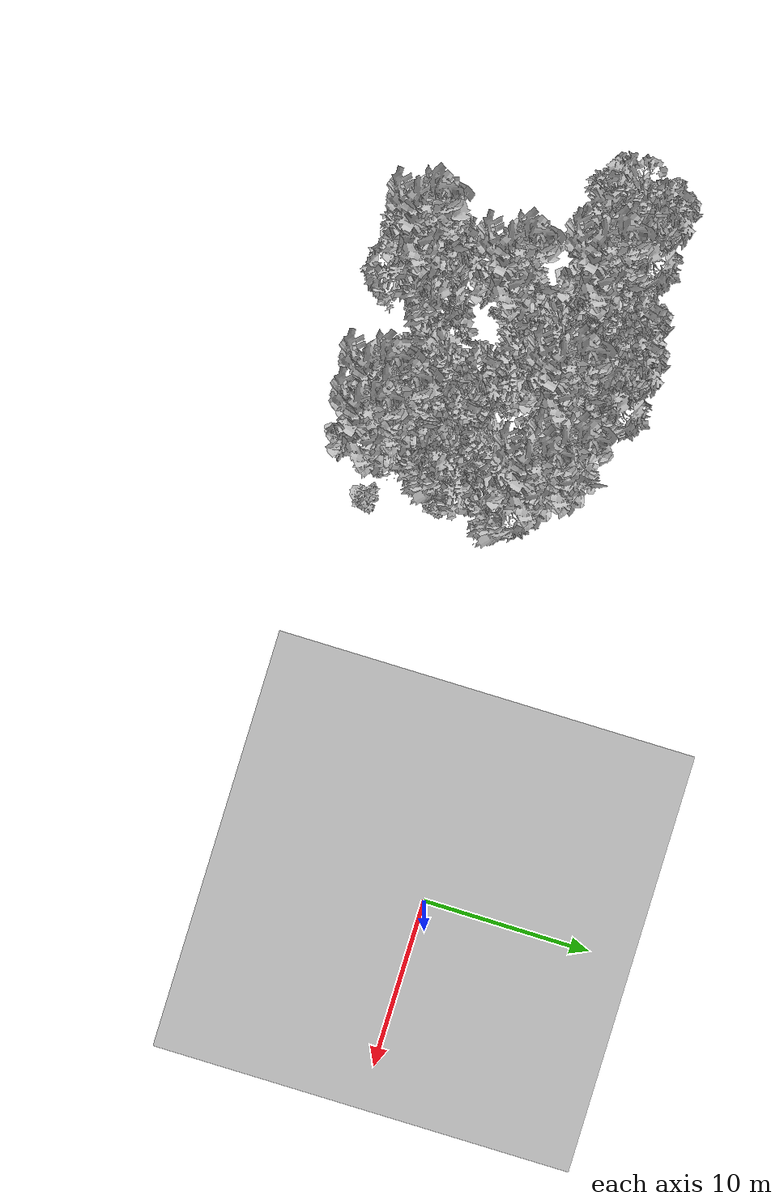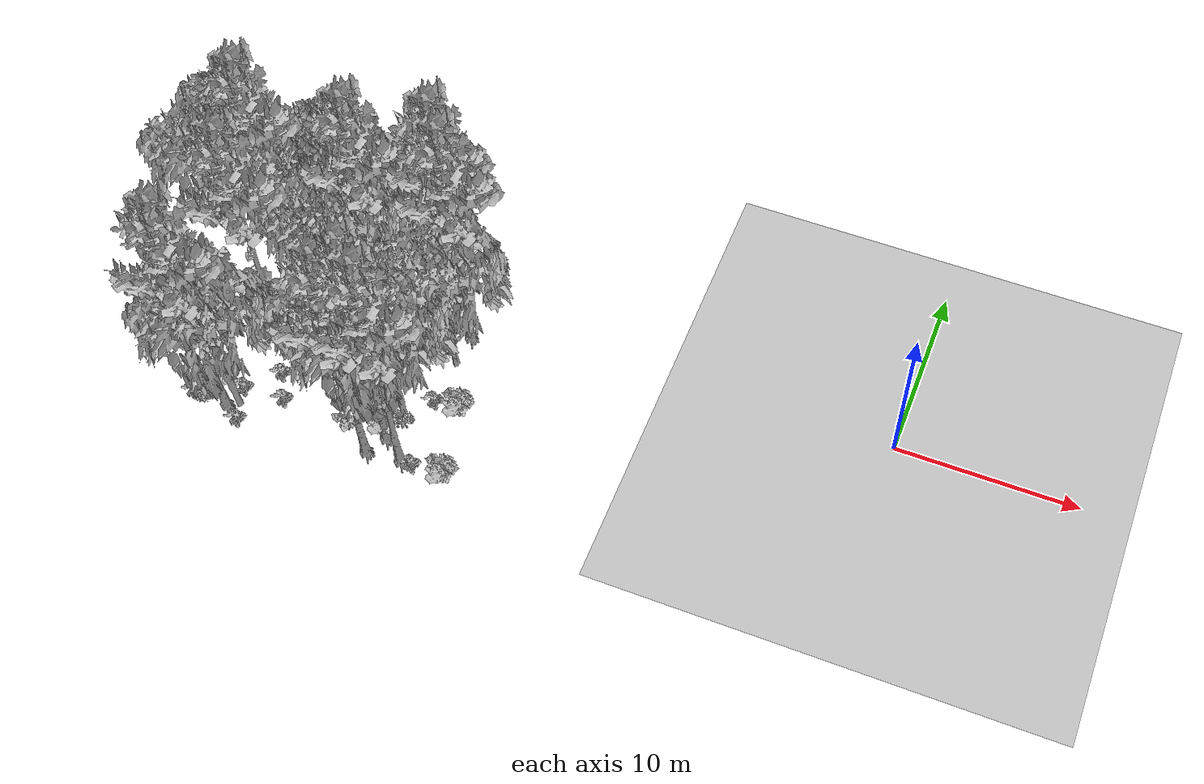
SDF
<sdf version="1.7">
 <world name="default">
  <model name="ground_plane">
   <static>1</static>
   <link name="link">
    <collision name="collision">
     <pose>-50 0 0 0 -0 0</pose>
     <geometry><plane><normal>0 0 1</normal><size>80 80</size></plane></geometry>
     <surface><contact><ode><min_depth>0.01</min_depth><max_vel>0</max_vel></ode></contact></surface>
    </collision>
    <visual name="grass">
     <cast_shadows>0</cast_shadows>
     <geometry>
      <mesh>
       <scale>0.46714285714285714 0.46714285714285714 0.1</scale>
       <uri>file://grass_plane/meshes/grass_plane.dae</uri>
      </mesh>
     </geometry>
    </visual>
   </link>
  </model>
  <model name="Tree 2">
   <static>1</static>
   <pose>-38.30100927178718 -0.0434767820588533 0 1.57079 -0 0</pose>
   <link name="link">
    <collision name="collision">
     <geometry><mesh><scale>3.5 5 3.5</scale><uri>model://tree_2/meshes/tree_2.obj</uri></mesh></geometry>
    </collision>
    <visual name="visual">
     <geometry><mesh><scale>3.5 5 3.5</scale><uri>model://tree_2/meshes/tree_2.obj</uri></mesh></geometry>
    </visual>
   </link>
  </model>
  <model name="Tree 20">
   <static>1</static>
   <pose>-24.754400181798694 -0.011830775836756402 0 1.57079 -0 0</pose>
   <link name="link">
    <collision name="collision">
     <geometry><mesh><scale>3.5 5 3.5</scale><uri>model://tree_9/meshes/tree_9.obj</uri></mesh></geometry>
    </collision>
    <visual name="visual">
     <geometry><mesh><scale>3.5 5 3.5</scale><uri>model://tree_9/meshes/tree_9.obj</uri></mesh></geometry>
    </visual>
   </link>
  </model>
  <model name="Tree 46">
   <static>1</static>
   <pose>-29.70063057392895 -2.3112436707422646 0 1.57079 -0 0</pose>
   <link name="link">
    <collision name="collision">
     <geometry><mesh><scale>3.5 5 3.5</scale><uri>model://tree_2/meshes/tree_2.obj</uri></mesh></geometry>
    </collision>
    <visual name="visual">
     <geometry><mesh><scale>3.5 5 3.5</scale><uri>model://tree_2/meshes/tree_2.obj</uri></mesh></geometry>
    </visual>
   </link>
  </model>
  <model name="Tree 69">
   <static>1</static>
   <pose>-28.711005760619766 -1.2571660660998347 0 1.57079 -0 0</pose>
   <link name="link">
    <collision name="collision">
     <geometry><mesh><scale>3.5 5 3.5</scale><uri>model://tree_9/meshes/tree_9.obj</uri></mesh></geometry>
    </collision>
    <visual name="visual">
     <geometry><mesh><scale>3.5 5 3.5</scale><uri>model://tree_9/meshes/tree_9.obj</uri></mesh></geometry>
    </visual>
   </link>
  </model>
  <model name="Tree 174">
   <static>1</static>
   <pose>-34.003290193584945 -10.043208382377237 0 1.57079 -0 0</pose>
   <link name="link">
    <collision name="collision">
     <geometry><mesh><scale>3.5 5 3.5</scale><uri>model://tree_9/meshes/tree_9.obj</uri></mesh></geometry>
    </collision>
    <visual name="visual">
     <geometry><mesh><scale>3.5 5 3.5</scale><uri>model://tree_9/meshes/tree_9.obj</uri></mesh></geometry>
    </visual>
   </link>
  </model>
  <model name="Tree 209">
   <static>1</static>
   <pose>-23.625304676937105 -1.4315081893823987 0 1.57079 -0 0</pose>
   <link name="link">
    <collision name="collision">
     <geometry><mesh><scale>3.5 5 3.5</scale><uri>model://tree_9/meshes/tree_9.obj</uri></mesh></geometry>
    </collision>
    <visual name="visual">
     <geometry><mesh><scale>3.5 5 3.5</scale><uri>model://tree_9/meshes/tree_9.obj</uri></mesh></geometry>
    </visual>
   </link>
  </model>
  <model name="Tree 240">
   <static>1</static>
   <pose>-27.386293087236453 -7.104045204170497 0 1.57079 -0 0</pose>
   <link name="link">
    <collision name="collision">
     <geometry><mesh><scale>3.5 5 3.5</scale><uri>model://tree_2/meshes/tree_2.obj</uri></mesh></geometry>
    </collision>
    <visual name="visual">
     <geometry><mesh><scale>3.5 5 3.5</scale><uri>model://tree_2/meshes/tree_2.obj</uri></mesh></geometry>
    </visual>
   </link>
  </model>
  <model name="Tree 261">
   <static>1</static>
   <pose>-30.506226560399654 -2.0006889028276404 0 1.57079 -0 0</pose>
   <link name="link">
    <collision name="collision">
     <geometry><mesh><scale>3.5 5 3.5</scale><uri>model://tree_2/meshes/tree_2.obj</uri></mesh></geometry>
    </collision>
    <visual name="visual">
     <geometry><mesh><scale>3.5 5 3.5</scale><uri>model://tree_2/meshes/tree_2.obj</uri></mesh></geometry>
    </visual>
   </link>
  </model>
  <model name="Tree 316">
   <static>1</static>
   <pose>-25.146127630814334 -8.872801421370706 0 1.57079 -0 0</pose>
   <link name="link">
    <collision name="collision">
     <geometry><mesh><scale>3.5 5 3.5</scale><uri>model://tree_9/meshes/tree_9.obj</uri></mesh></geometry>
    </collision>
    <visual name="visual">
     <geometry><mesh><scale>3.5 5 3.5</scale><uri>model://tree_9/meshes/tree_9.obj</uri></mesh></geometry>
    </visual>
   </link>
  </model>
  <model name="Tree 335">
   <static>1</static>
   <pose>-23.842230777038488 -9.860846130175432 0 1.57079 -0 0</pose>
   <link name="link">
    <collision name="collision">
     <geometry><mesh><scale>3.5 5 3.5</scale><uri>model://tree_9/meshes/tree_9.obj</uri></mesh></geometry>
    </collision>
    <visual name="visual">
     <geometry><mesh><scale>3.5 5 3.5</scale><uri>model://tree_9/meshes/tree_9.obj</uri></mesh></geometry>
    </visual>
   </link>
  </model>
  <model name="Tree 345">
   <static>1</static>
   <pose>-24.86840487488694 -7.377229577977786 0 1.57079 -0 0</pose>
   <link name="link">
    <collision name="collision">
     <geometry><mesh><scale>3.5 5 3.5</scale><uri>model://tree_2/meshes/tree_2.obj</uri></mesh></geometry>
    </collision>
    <visual name="visual">
     <geometry><mesh><scale>3.5 5 3.5</scale><uri>model://tree_2/meshes/tree_2.obj</uri></mesh></geometry>
    </visual>
   </link>
  </model>
  <model name="Tree 373">
   <static>1</static>
   <pose>-34.660904367206946 -1.0604286522338597 0 1.57079 -0 0</pose>
   <link name="link">
    <collision name="collision">
     <geometry><mesh><scale>3.5 5 3.5</scale><uri>model://tree_9/meshes/tree_9.obj</uri></mesh></geometry>
    </collision>
    <visual name="visual">
     <geometry><mesh><scale>3.5 5 3.5</scale><uri>model://tree_9/meshes/tree_9.obj</uri></mesh></geometry>
    </visual>
   </link>
  </model>
  <model name="Tree 404">
   <static>1</static>
   <pose>-32.360722948533585 0.2503871224715084 0 1.57079 -0 0</pose>
   <link name="link">
    <collision name="collision">
     <geometry><mesh><scale>3.5 5 3.5</scale><uri>model://tree_2/meshes/tree_2.obj</uri></mesh></geometry>
    </collision>
    <visual name="visual">
     <geometry><mesh><scale>3.5 5 3.5</scale><uri>model://tree_2/meshes/tree_2.obj</uri></mesh></geometry>
    </visual>
   </link>
  </model>
  <model name="Tree 444">
   <static>1</static>
   <pose>-25.80388987067411 -8.404712421568952 0 1.57079 -0 0</pose>
   <link name="link">
    <collision name="collision">
     <geometry><mesh><scale>3.5 5 3.5</scale><uri>model://tree_2/meshes/tree_2.obj</uri></mesh></geometry>
    </collision>
    <visual name="visual">
     <geometry><mesh><scale>3.5 5 3.5</scale><uri>model://tree_2/meshes/tree_2.obj</uri></mesh></geometry>
    </visual>
   </link>
  </model>
  <model name="Tree 465">
   <static>1</static>
   <pose>-25.771886492650133 -9.988026081624135 0 1.57079 -0 0</pose>
   <link name="link">
    <collision name="collision">
     <geometry><mesh><scale>3.5 5 3.5</scale><uri>model://tree_9/meshes/tree_9.obj</uri></mesh></geometry>
    </collision>
    <visual name="visual">
     <geometry><mesh><scale>3.5 5 3.5</scale><uri>model://tree_9/meshes/tree_9.obj</uri></mesh></geometry>
    </visual>
   </link>
  </model>
  <model name="Tree 499">
   <static>1</static>
   <pose>-33.372991691057074 -9.847846978116948 0 1.57079 -0 0</pose>
   <link name="link">
    <collision name="collision">
     <geometry><mesh><scale>3.5 5 3.5</scale><uri>model://tree_2/meshes/tree_2.obj</uri></mesh></geometry>
    </collision>
    <visual name="visual">
     <geometry><mesh><scale>3.5 5 3.5</scale><uri>model://tree_2/meshes/tree_2.obj</uri></mesh></geometry>
    </visual>
   </link>
  </model>
  <model name="Tree 502">
   <static>1</static>
   <pose>-30.437066526436116 0.6567184100910453 0 1.57079 -0 0</pose>
   <link name="link">
    <collision name="collision">
     <geometry><mesh><scale>3.5 5 3.5</scale><uri>model://tree_2/meshes/tree_2.obj</uri></mesh></geometry>
    </collision>
    <visual name="visual">
     <geometry><mesh><scale>3.5 5 3.5</scale><uri>model://tree_2/meshes/tree_2.obj</uri></mesh></geometry>
    </visual>
   </link>
  </model>
  <model name="Tree 549">
   <static>1</static>
   <pose>-31.976466685976675 0.08808975873975555 0 1.57079 -0 0</pose>
   <link name="link">
    <collision name="collision">
     <geometry><mesh><scale>3.5 5 3.5</scale><uri>model://tree_2/meshes/tree_2.obj</uri></mesh></geometry>
    </collision>
    <visual name="visual">
     <geometry><mesh><scale>3.5 5 3.5</scale><uri>model://tree_2/meshes/tree_2.obj</uri></mesh></geometry>
    </visual>
   </link>
  </model>
  <model name="Tree 574">
   <static>1</static>
   <pose>-23.688489738384874 -3.4129681840597783 0 1.57079 -0 0</pose>
   <link name="link">
    <collision name="collision">
     <geometry><mesh><scale>3.5 5 3.5</scale><uri>model://tree_2/meshes/tree_2.obj</uri></mesh></geometry>
    </collision>
    <visual name="visual">
     <geometry><mesh><scale>3.5 5 3.5</scale><uri>model://tree_2/meshes/tree_2.obj</uri></mesh></geometry>
    </visual>
   </link>
  </model>
  <model name="Tree 631">
   <static>1</static>
   <pose>-33.27732764353851 -5.1996258521526 0 1.57079 -0 0</pose>
   <link name="link">
    <collision name="collision">
     <geometry><mesh><scale>3.5 5 3.5</scale><uri>model://tree_9/meshes/tree_9.obj</uri></mesh></geometry>
    </collision>
    <visual name="visual">
     <geometry><mesh><scale>3.5 5 3.5</scale><uri>model://tree_9/meshes/tree_9.obj</uri></mesh></geometry>
    </visual>
   </link>
  </model>
  <model name="Bush 13">
   <static>1</static>
   <pose>-30.804862184038473 -4.546924514683532 0 1.57079 -0 0</pose>
   <link name="link">
    <collision name="collision">
     <geometry><mesh><scale>2 2 2</scale><uri>model://bush_0/meshes/bush_0.obj</uri></mesh></geometry>
     <surface><contact><collide_without_contact>false</collide_without_contact></contact></surface>
    </collision>
    <visual name="visual">
     <geometry><mesh><scale>2 2 2</scale><uri>model://bush_0/meshes/bush_0.obj</uri></mesh></geometry>
    </visual>
   </link>
  </model>
  <model name="Bush 21">
   <static>1</static>
   <pose>-25.429895834831843 -1.0748830967896978 0 1.57079 -0 0</pose>
   <link name="link">
    <collision name="collision">
     <geometry><mesh><scale>2 2 2</scale><uri>model://bush_0/meshes/bush_0.obj</uri></mesh></geometry>
     <surface><contact><collide_without_contact>false</collide_without_contact></contact></surface>
    </collision>
    <visual name="visual">
     <geometry><mesh><scale>2 2 2</scale><uri>model://bush_0/meshes/bush_0.obj</uri></mesh></geometry>
    </visual>
   </link>
  </model>
  <model name="Bush 41">
   <static>1</static>
   <pose>-35.214157226542774 -10.33623096525817 0 1.57079 -0 0</pose>
   <link name="link">
    <collision name="collision">
     <geometry><mesh><scale>2 2 2</scale><uri>model://bush_4/meshes/bush_4.obj</uri></mesh></geometry>
     <surface><contact><collide_without_contact>false</collide_without_contact></contact></surface>
    </collision>
    <visual name="visual">
     <geometry><mesh><scale>2 2 2</scale><uri>model://bush_4/meshes/bush_4.obj</uri></mesh></geometry>
    </visual>
   </link>
  </model>
  <model name="Bush 55">
   <static>1</static>
   <pose>-27.105819418293507 -9.179314750151882 0 1.57079 -0 0</pose>
   <link name="link">
    <collision name="collision">
     <geometry><mesh><scale>2 2 2</scale><uri>model://bush_0/meshes/bush_0.obj</uri></mesh></geometry>
     <surface><contact><collide_without_contact>false</collide_without_contact></contact></surface>
    </collision>
    <visual name="visual">
     <geometry><mesh><scale>2 2 2</scale><uri>model://bush_0/meshes/bush_0.obj</uri></mesh></geometry>
    </visual>
   </link>
  </model>
  <model name="Bush 80">
   <static>1</static>
   <pose>-31.33217440289067 -8.735247753653283 0 1.57079 -0 0</pose>
   <link name="link">
    <collision name="collision">
     <geometry><mesh><scale>2 2 2</scale><uri>model://bush_2/meshes/bush_2.obj</uri></mesh></geometry>
     <surface><contact><collide_without_contact>false</collide_without_contact></contact></surface>
    </collision>
    <visual name="visual">
     <geometry><mesh><scale>2 2 2</scale><uri>model://bush_2/meshes/bush_2.obj</uri></mesh></geometry>
    </visual>
   </link>
  </model>
  <model name="Bush 129">
   <static>1</static>
   <pose>-23.7999543113337 -5.9772766190279185 0 1.57079 -0 0</pose>
   <link name="link">
    <collision name="collision">
     <geometry><mesh><scale>2 2 2</scale><uri>model://bush_2/meshes/bush_2.obj</uri></mesh></geometry>
     <surface><contact><collide_without_contact>false</collide_without_contact></contact></surface>
    </collision>
    <visual name="visual">
     <geometry><mesh><scale>2 2 2</scale><uri>model://bush_2/meshes/bush_2.obj</uri></mesh></geometry>
    </visual>
   </link>
  </model>
  <model name="Bush 228">
   <static>1</static>
   <pose>-36.064562406617576 -9.95534082696036 0 1.57079 -0 0</pose>
   <link name="link">
    <collision name="collision">
     <geometry><mesh><scale>2 2 2</scale><uri>model://bush_2/meshes/bush_2.obj</uri></mesh></geometry>
     <surface><contact><collide_without_contact>false</collide_without_contact></contact></surface>
    </collision>
    <visual name="visual">
     <geometry><mesh><scale>2 2 2</scale><uri>model://bush_2/meshes/bush_2.obj</uri></mesh></geometry>
    </visual>
   </link>
  </model>
  <model name="Bush 264">
   <static>1</static>
   <pose>-21.364873699087333 -10.191753274653934 0 1.57079 -0 0</pose>
   <link name="link">
    <collision name="collision">
     <geometry><mesh><scale>2 2 2</scale><uri>model://bush_1/meshes/bush_1.obj</uri></mesh></geometry>
     <surface><contact><collide_without_contact>false</collide_without_contact></contact></surface>
    </collision>
    <visual name="visual">
     <geometry><mesh><scale>2 2 2</scale><uri>model://bush_1/meshes/bush_1.obj</uri></mesh></geometry>
    </visual>
   </link>
  </model>
  <model name="Bush 274">
   <static>1</static>
   <pose>-32.16260397927029 -7.300699828687279 0 1.57079 -0 0</pose>
   <link name="link">
    <collision name="collision">
     <geometry><mesh><scale>2 2 2</scale><uri>model://bush_2/meshes/bush_2.obj</uri></mesh></geometry>
     <surface><contact><collide_without_contact>false</collide_without_contact></contact></surface>
    </collision>
    <visual name="visual">
     <geometry><mesh><scale>2 2 2</scale><uri>model://bush_2/meshes/bush_2.obj</uri></mesh></geometry>
    </visual>
   </link>
  </model>
  <model name="Bush 312">
   <static>1</static>
   <pose>-24.43560627854672 -1.2031668864396323 0 1.57079 -0 0</pose>
   <link name="link">
    <collision name="collision">
     <geometry><mesh><scale>2 2 2</scale><uri>model://bush_2/meshes/bush_2.obj</uri></mesh></geometry>
     <surface><contact><collide_without_contact>false</collide_without_contact></contact></surface>
    </collision>
    <visual name="visual">
     <geometry><mesh><scale>2 2 2</scale><uri>model://bush_2/meshes/bush_2.obj</uri></mesh></geometry>
    </visual>
   </link>
  </model>
  <model name="Bush 350">
   <static>1</static>
   <pose>-23.265791285465703 -9.928736961966827 0 1.57079 -0 0</pose>
   <link name="link">
    <collision name="collision">
     <geometry><mesh><scale>2 2 2</scale><uri>model://bush_2/meshes/bush_2.obj</uri></mesh></geometry>
     <surface><contact><collide_without_contact>false</collide_without_contact></contact></surface>
    </collision>
    <visual name="visual">
     <geometry><mesh><scale>2 2 2</scale><uri>model://bush_2/meshes/bush_2.obj</uri></mesh></geometry>
    </visual>
   </link>
  </model>
  <model name="Bush 355">
   <static>1</static>
   <pose>-34.0624890776747 -5.906861643522632 0 1.57079 -0 0</pose>
   <link name="link">
    <collision name="collision">
     <geometry><mesh><scale>2 2 2</scale><uri>model://bush_2/meshes/bush_2.obj</uri></mesh></geometry>
     <surface><contact><collide_without_contact>false</collide_without_contact></contact></surface>
    </collision>
    <visual name="visual">
     <geometry><mesh><scale>2 2 2</scale><uri>model://bush_2/meshes/bush_2.obj</uri></mesh></geometry>
    </visual>
   </link>
  </model>
  <model name="Bush 372">
   <static>1</static>
   <pose>-24.334759780749984 -7.985678613105037 0 1.57079 -0 0</pose>
   <link name="link">
    <collision name="collision">
     <geometry><mesh><scale>2 2 2</scale><uri>model://bush_5/meshes/bush_5.obj</uri></mesh></geometry>
     <surface><contact><collide_without_contact>false</collide_without_contact></contact></surface>
    </collision>
    <visual name="visual">
     <geometry><mesh><scale>2 2 2</scale><uri>model://bush_5/meshes/bush_5.obj</uri></mesh></geometry>
    </visual>
   </link>
  </model>
  <model name="Bush 390">
   <static>1</static>
   <pose>-25.450868173122675 -7.289324064551096 0 1.57079 -0 0</pose>
   <link name="link">
    <collision name="collision">
     <geometry><mesh><scale>2 2 2</scale><uri>model://bush_0/meshes/bush_0.obj</uri></mesh></geometry>
     <surface><contact><collide_without_contact>false</collide_without_contact></contact></surface>
    </collision>
    <visual name="visual">
     <geometry><mesh><scale>2 2 2</scale><uri>model://bush_0/meshes/bush_0.obj</uri></mesh></geometry>
    </visual>
   </link>
  </model>
  <model name="Bush 424">
   <static>1</static>
   <pose>-33.65435259396714 -8.839847361552646 0 1.57079 -0 0</pose>
   <link name="link">
    <collision name="collision">
     <geometry><mesh><scale>2 2 2</scale><uri>model://bush_2/meshes/bush_2.obj</uri></mesh></geometry>
     <surface><contact><collide_without_contact>false</collide_without_contact></contact></surface>
    </collision>
    <visual name="visual">
     <geometry><mesh><scale>2 2 2</scale><uri>model://bush_2/meshes/bush_2.obj</uri></mesh></geometry>
    </visual>
   </link>
  </model>
  <model name="Bush 431">
   <static>1</static>
   <pose>-38.46578897818974 -2.880583070445212 0 1.57079 -0 0</pose>
   <link name="link">
    <collision name="collision">
     <geometry><mesh><scale>2 2 2</scale><uri>model://bush_0/meshes/bush_0.obj</uri></mesh></geometry>
     <surface><contact><collide_without_contact>false</collide_without_contact></contact></surface>
    </collision>
    <visual name="visual">
     <geometry><mesh><scale>2 2 2</scale><uri>model://bush_0/meshes/bush_0.obj</uri></mesh></geometry>
    </visual>
   </link>
  </model>
  <model name="Bush 494">
   <static>1</static>
   <pose>-33.10101608220051 -10.694558326537262 0 1.57079 -0 0</pose>
   <link name="link">
    <collision name="collision">
     <geometry><mesh><scale>2 2 2</scale><uri>model://bush_2/meshes/bush_2.obj</uri></mesh></geometry>
     <surface><contact><collide_without_contact>false</collide_without_contact></contact></surface>
    </collision>
    <visual name="visual">
     <geometry><mesh><scale>2 2 2</scale><uri>model://bush_2/meshes/bush_2.obj</uri></mesh></geometry>
    </visual>
   </link>
  </model>
  <model name="Bush 528">
   <static>1</static>
   <pose>-35.615660171207494 -0.12236159226379328 0 1.57079 -0 0</pose>
   <link name="link">
    <collision name="collision">
     <geometry><mesh><scale>2 2 2</scale><uri>model://bush_4/meshes/bush_4.obj</uri></mesh></geometry>
     <surface><contact><collide_without_contact>false</collide_without_contact></contact></surface>
    </collision>
    <visual name="visual">
     <geometry><mesh><scale>2 2 2</scale><uri>model://bush_4/meshes/bush_4.obj</uri></mesh></geometry>
    </visual>
   </link>
  </model>
  <model name="Bush 545">
   <static>1</static>
   <pose>-34.275847718685434 -8.834339513658335 0 1.57079 -0 0</pose>
   <link name="link">
    <collision name="collision">
     <geometry><mesh><scale>2 2 2</scale><uri>model://bush_0/meshes/bush_0.obj</uri></mesh></geometry>
     <surface><contact><collide_without_contact>false</collide_without_contact></contact></surface>
    </collision>
    <visual name="visual">
     <geometry><mesh><scale>2 2 2</scale><uri>model://bush_0/meshes/bush_0.obj</uri></mesh></geometry>
    </visual>
   </link>
  </model>
  <model name="Bush 549">
   <static>1</static>
   <pose>-25.05971844958709 -1.8077997829275816 0 1.57079 -0 0</pose>
   <link name="link">
    <collision name="collision">
     <geometry><mesh><scale>2 2 2</scale><uri>model://bush_2/meshes/bush_2.obj</uri></mesh></geometry>
     <surface><contact><collide_without_contact>false</collide_without_contact></contact></surface>
    </collision>
    <visual name="visual">
     <geometry><mesh><scale>2 2 2</scale><uri>model://bush_2/meshes/bush_2.obj</uri></mesh></geometry>
    </visual>
   </link>
  </model>
  <model name="Bush 554">
   <static>1</static>
   <pose>-22.23381243634622 -6.248474644158506 0 1.57079 -0 0</pose>
   <link name="link">
    <collision name="collision">
     <geometry><mesh><scale>2 2 2</scale><uri>model://bush_1/meshes/bush_1.obj</uri></mesh></geometry>
     <surface><contact><collide_without_contact>false</collide_without_contact></contact></surface>
    </collision>
    <visual name="visual">
     <geometry><mesh><scale>2 2 2</scale><uri>model://bush_1/meshes/bush_1.obj</uri></mesh></geometry>
    </visual>
   </link>
  </model>
  <model name="Bush 561">
   <static>1</static>
   <pose>-35.92238709981676 -9.524759512979422 0 1.57079 -0 0</pose>
   <link name="link">
    <collision name="collision">
     <geometry><mesh><scale>2 2 2</scale><uri>model://bush_2/meshes/bush_2.obj</uri></mesh></geometry>
     <surface><contact><collide_without_contact>false</collide_without_contact></contact></surface>
    </collision>
    <visual name="visual">
     <geometry><mesh><scale>2 2 2</scale><uri>model://bush_2/meshes/bush_2.obj</uri></mesh></geometry>
    </visual>
   </link>
  </model>
  <model name="Bush 578">
   <static>1</static>
   <pose>-25.446412433108147 -8.626834295340508 0 1.57079 -0 0</pose>
   <link name="link">
    <collision name="collision">
     <geometry><mesh><scale>2 2 2</scale><uri>model://bush_1/meshes/bush_1.obj</uri></mesh></geometry>
     <surface><contact><collide_without_contact>false</collide_without_contact></contact></surface>
    </collision>
    <visual name="visual">
     <geometry><mesh><scale>2 2 2</scale><uri>model://bush_1/meshes/bush_1.obj</uri></mesh></geometry>
    </visual>
   </link>
  </model>
  <model name="Bush 604">
   <static>1</static>
   <pose>-29.23617806893205 -1.4181492272746326 0 1.57079 -0 0</pose>
   <link name="link">
    <collision name="collision">
     <geometry><mesh><scale>2 2 2</scale><uri>model://bush_2/meshes/bush_2.obj</uri></mesh></geometry>
     <surface><contact><collide_without_contact>false</collide_without_contact></contact></surface>
    </collision>
    <visual name="visual">
     <geometry><mesh><scale>2 2 2</scale><uri>model://bush_2/meshes/bush_2.obj</uri></mesh></geometry>
    </visual>
   </link>
  </model>
  <model name="Bush 639">
   <static>1</static>
   <pose>-24.621221516489555 -2.436052961868654 0 1.57079 -0 0</pose>
   <link name="link">
    <collision name="collision">
     <geometry><mesh><scale>2 2 2</scale><uri>model://bush_4/meshes/bush_4.obj</uri></mesh></geometry>
     <surface><contact><collide_without_contact>false</collide_without_contact></contact></surface>
    </collision>
    <visual name="visual">
     <geometry><mesh><scale>2 2 2</scale><uri>model://bush_4/meshes/bush_4.obj</uri></mesh></geometry>
    </visual>
   </link>
  </model>
 </world>
</sdf>
